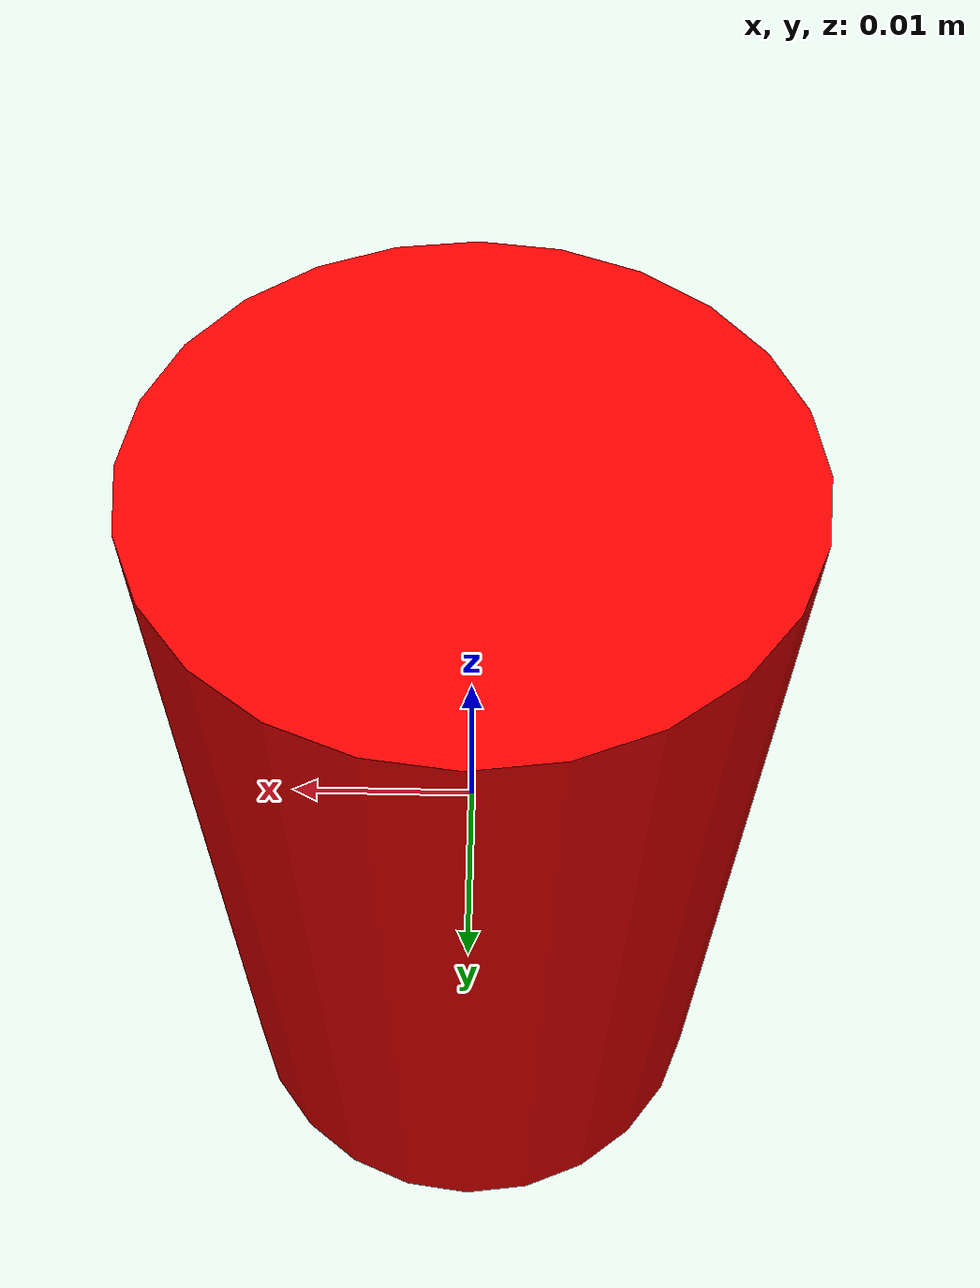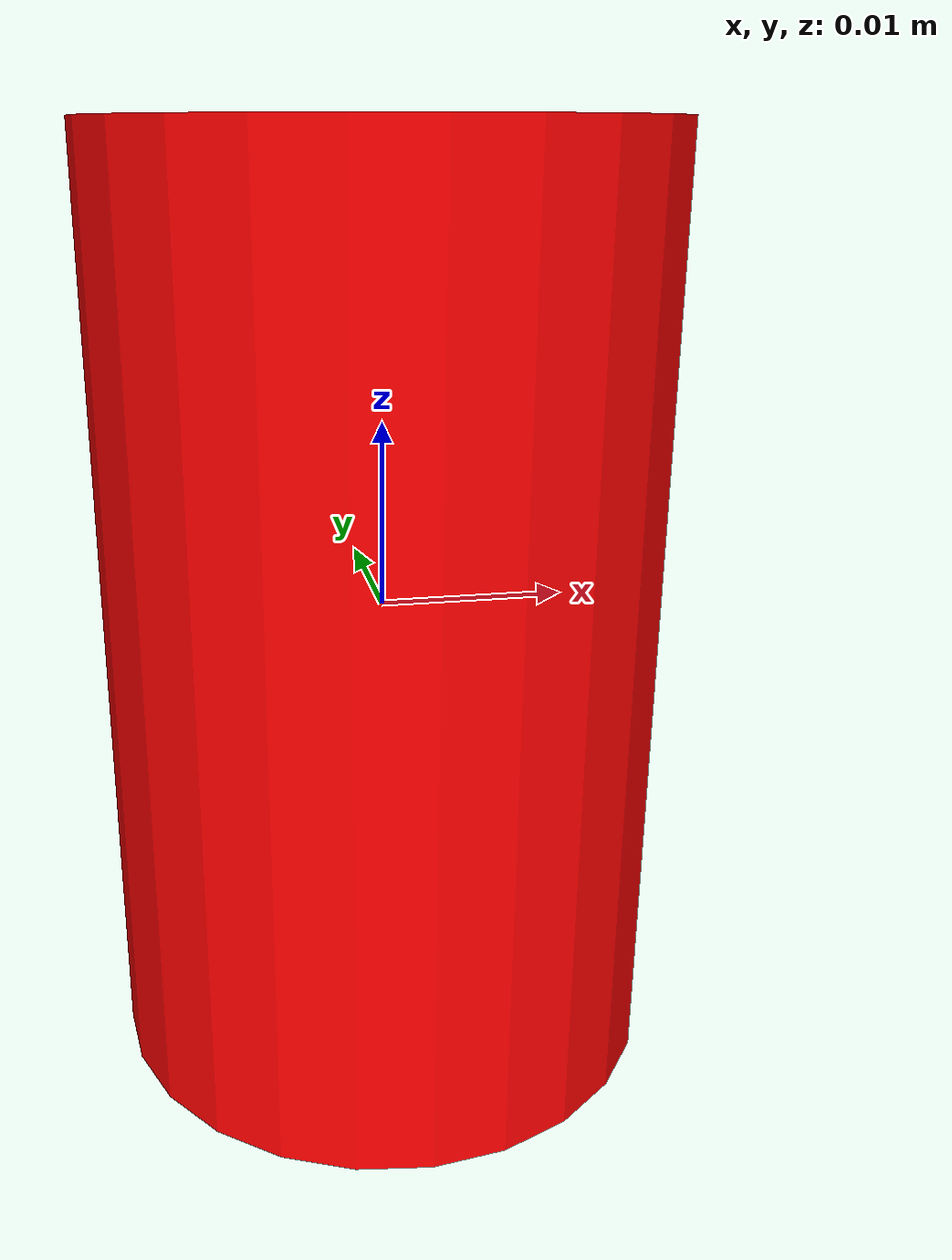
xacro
<?xml version="1.0"?>
<robot xmlns:xacro="http://ros.org/wiki/xacro" name="red_cylinder">
  <!-- Cylinder properties -->
  <xacro:property name="radius" value="0.015" />  <!-- 1.5cm radius -->
  <xacro:property name="height" value="0.05" />   <!-- 5cm height -->
  <xacro:property name="mass" value="0.030" />    <!-- 30g mass -->

  <!-- Define robot_name property -->
  <xacro:arg name="robot_name" default="red_cylinder"/>
  <xacro:property name="robot_name" value="$(arg robot_name)"/>

  <!-- Add world link definition -->
  <link name="world"/>

  <!-- Cylinder link -->
  <link name="red_cylinder_link">
    <visual>
      <origin xyz="0 0 0" rpy="0 0 0"/>
      <geometry>
        <cylinder radius="${radius}" length="${height}"/>
      </geometry>
      <material name="red">
        <color rgba="1 0 0 1"/>
      </material>
    </visual>

    <collision>
      <origin xyz="0 0 0" rpy="0 0 0"/>
      <geometry>
        <cylinder radius="${radius}" length="${height}"/>
      </geometry>
    </collision>

    <inertial>
      <origin xyz="0 0 0" rpy="0 0 0"/>
      <mass value="${mass}"/>
      <!-- Inertia for a cylinder -->
      <inertia
        ixx="${(mass/12) * (3*radius*radius + height*height)}" ixy="0.0" ixz="0.0"
        iyy="${(mass/12) * (3*radius*radius + height*height)}" iyz="0.0"
        izz="${(mass/2) * (radius*radius)}"/>
    </inertial>
  </link>

  <!-- Virtual floating joint to track cylinder position -->
  <joint name="cylinder_world_joint" type="floating">
    <parent link="world"/>
    <child link="red_cylinder_link"/>
  </joint>

  <!-- Gazebo color -->
  <gazebo reference="red_cylinder_link">
    <material>Gazebo/Red</material>
    <auto_disable>false</auto_disable>
  </gazebo>

  <!-- Modified P3D plugin with unique topic name -->
  <gazebo>
    <plugin name="gazebo_ros_p3d" filename="libgazebo_ros_p3d.so">
      <always_on>true</always_on>
      <ros>
        <namespace>red_cylinder</namespace>
        <remapping>odom:=pose</remapping>  <!-- Changed from pose to cylinder_pose -->
      </ros>
      <body_name>red_cylinder_link</body_name>
      <frame_name>world</frame_name>
      <update_rate>30.0</update_rate>
    </plugin>
  </gazebo>
</robot>
